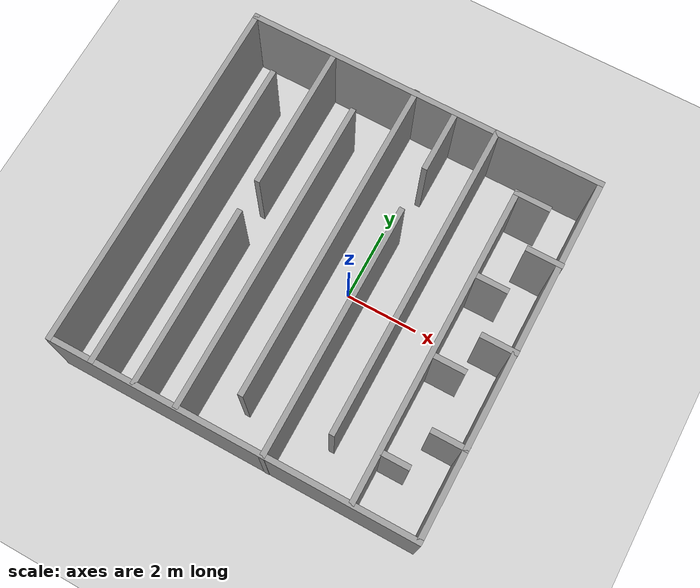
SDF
<sdf version="1.7">
 <world name="default">
  <light name="sun" type="directional">
   <pose>0 0 10 0 -0 0</pose>
   <diffuse>0.8 0.8 0.8 1</diffuse>
   <specular>0.2 0.2 0.2 1</specular>
   <attenuation>
    <range>1000</range>
    <constant>0.9</constant>
    <linear>0.01</linear>
    <quadratic>0.001</quadratic>
   </attenuation>
   <direction>-0.5 0.1 -0.9</direction>
   <spot><inner_angle>0</inner_angle><outer_angle>0</outer_angle><falloff>0</falloff></spot>
  </light>
  <model name="ground_plane">
   <static>1</static>
   <link name="link">
    <collision name="collision">
     <geometry><plane><normal>0 0 1</normal><size>100 100</size></plane></geometry>
     <surface>
      <contact><collide_bitmask>65535</collide_bitmask></contact>
      <friction><ode><mu>100</mu><mu2>50</mu2></ode></friction>
     </surface>
    </collision>
    <visual name="visual">
     <cast_shadows>0</cast_shadows>
     <geometry><plane><normal>0 0 1</normal><size>100 100</size></plane></geometry>
     <material>
      <script><uri>file://media/materials/scripts/gazebo.material</uri><name>Gazebo/Grey</name></script>
     </material>
    </visual>
   </link>
  </model>
  <gravity>0 0 -9.8</gravity>
  <magnetic_field>6e-06 2.3e-05 -4.2e-05</magnetic_field>
  <atmosphere type="adiabatic"/>
  <physics type="ode">
   <max_step_size>0.001</max_step_size>
   <real_time_factor>1</real_time_factor>
   <real_time_update_rate>1000</real_time_update_rate>
  </physics>
  <scene><ambient>0.4 0.4 0.4 1</ambient><background>0.7 0.7 0.7 1</background><shadows>1</shadows></scene>
  <spherical_coordinates>
   <surface_model>EARTH_WGS84</surface_model>
   <latitude_deg>0</latitude_deg>
   <longitude_deg>0</longitude_deg>
   <elevation>0</elevation>
   <heading_deg>0</heading_deg>
  </spherical_coordinates>
  <model name="scots2">
   <pose>-0.456727 -0.036555 0.008424 0 -0 0</pose>
   <link name="Wall_14">
    <collision name="Wall_14_Collision">
     <geometry><box><size>10 0.15 2.5</size></box></geometry>
     <pose>0 0 1.25 0 -0 0</pose>
    </collision>
    <visual name="Wall_14_Visual">
     <pose>0 0 1.25 0 -0 0</pose>
     <geometry><box><size>10 0.15 2.5</size></box></geometry>
     <material>
      <script><uri>file://media/materials/scripts/gazebo.material</uri><name>Gazebo/Grey</name></script>
      <ambient>1 1 1 1</ambient>
     </material>
     <meta><layer>0</layer></meta>
    </visual>
    <pose>-4.93346 -0.006517 0 0 -0 1.5708</pose>
   </link>
   <link name="Wall_15">
    <collision name="Wall_15_Collision">
     <geometry><box><size>10 0.15 2.5</size></box></geometry>
     <pose>0 0 1.25 0 -0 0</pose>
    </collision>
    <visual name="Wall_15_Visual">
     <pose>0 0 1.25 0 -0 0</pose>
     <geometry><box><size>10 0.15 2.5</size></box></geometry>
     <material>
      <script><uri>file://media/materials/scripts/gazebo.material</uri><name>Gazebo/Grey</name></script>
      <ambient>1 1 1 1</ambient>
     </material>
     <meta><layer>0</layer></meta>
    </visual>
    <pose>-0.008464 4.91848 0 0 -0 0</pose>
   </link>
   <link name="Wall_16">
    <collision name="Wall_16_Collision">
     <geometry><box><size>10 0.15 2.5</size></box></geometry>
     <pose>0 0 1.25 0 -0 0</pose>
    </collision>
    <visual name="Wall_16_Visual">
     <pose>0 0 1.25 0 -0 0</pose>
     <geometry><box><size>10 0.15 2.5</size></box></geometry>
     <material>
      <script><uri>file://media/materials/scripts/gazebo.material</uri><name>Gazebo/Grey</name></script>
      <ambient>1 1 1 1</ambient>
     </material>
     <meta><layer>0</layer></meta>
    </visual>
    <pose>4.91654 -0.006517 0 0 -0 -1.5708</pose>
   </link>
   <link name="Wall_21">
    <collision name="Wall_21_Collision">
     <geometry><box><size>8.75 0.15 2.5</size></box></geometry>
     <pose>0 0 1.25 0 -0 0</pose>
    </collision>
    <visual name="Wall_21_Visual">
     <pose>0 0 1.25 0 -0 0</pose>
     <geometry><box><size>8.75 0.15 2.5</size></box></geometry>
     <material>
      <script><uri>file://media/materials/scripts/gazebo.material</uri><name>Gazebo/Grey</name></script>
      <ambient>1 1 1 1</ambient>
     </material>
     <meta><layer>0</layer></meta>
    </visual>
    <pose>-3.75568 -0.625387 0 0 -0 1.5708</pose>
   </link>
   <link name="Wall_24">
    <collision name="Wall_24_Collision">
     <geometry><box><size>10 0.15 2.5</size></box></geometry>
     <pose>0 0 1.25 0 -0 0</pose>
    </collision>
    <visual name="Wall_24_Visual">
     <pose>0 0 1.25 0 -0 0</pose>
     <geometry><box><size>10 0.15 2.5</size></box></geometry>
     <material>
      <script><uri>file://media/materials/scripts/gazebo.material</uri><name>Gazebo/Grey</name></script>
      <ambient>1 1 1 1</ambient>
     </material>
     <meta><layer>0</layer></meta>
    </visual>
    <pose>-0.008464 -4.93152 0 0 -0 0</pose>
   </link>
   <link name="Wall_31">
    <collision name="Wall_31_Collision">
     <geometry><box><size>5 0.15 2.5</size></box></geometry>
     <pose>0 0 1.25 0 -0 0</pose>
    </collision>
    <visual name="Wall_31_Visual">
     <pose>0 0 1.25 0 -0 0</pose>
     <geometry><box><size>5 0.15 2.5</size></box></geometry>
     <material>
      <script><uri>file://media/materials/scripts/gazebo.material</uri><name>Gazebo/Grey</name></script>
      <ambient>1 1 1 1</ambient>
     </material>
     <meta><layer>0</layer></meta>
    </visual>
    <pose>-2.60034 -2.46392 0 0 -0 -1.5708</pose>
   </link>
   <link name="Wall_33">
    <collision name="Wall_33_Collision">
     <geometry><box><size>8.75 0.15 2.5</size></box></geometry>
     <pose>0 0 1.25 0 -0 0</pose>
    </collision>
    <visual name="Wall_33_Visual">
     <pose>0 0 1.25 0 -0 0</pose>
     <geometry><box><size>8.75 0.15 2.5</size></box></geometry>
     <material>
      <script><uri>file://media/materials/scripts/gazebo.material</uri><name>Gazebo/Grey</name></script>
      <ambient>1 1 1 1</ambient>
     </material>
     <meta><layer>0</layer></meta>
    </visual>
    <pose>-1.44813 -0.590704 0 0 -0 -1.5708</pose>
   </link>
   <link name="Wall_42">
    <collision name="Wall_42_Collision">
     <geometry><box><size>9 0.15 2.5</size></box></geometry>
     <pose>0 0 1.25 0 -0 0</pose>
    </collision>
    <visual name="Wall_42_Visual">
     <pose>0 0 1.25 0 -0 0</pose>
     <geometry><box><size>9 0.15 2.5</size></box></geometry>
     <material>
      <script><uri>file://media/materials/scripts/gazebo.material</uri><name>Gazebo/Grey</name></script>
      <ambient>1 1 1 1</ambient>
     </material>
     <meta><layer>0</layer></meta>
    </visual>
    <pose>-0.266412 0.51465 0 0 -0 -1.5708</pose>
   </link>
   <link name="Wall_44">
    <collision name="Wall_44_Collision">
     <geometry><box><size>7 0.15 2.5</size></box></geometry>
     <pose>0 0 1.25 0 -0 0</pose>
    </collision>
    <visual name="Wall_44_Visual">
     <pose>0 0 1.25 0 -0 0</pose>
     <geometry><box><size>7 0.15 2.5</size></box></geometry>
     <material>
      <script><uri>file://media/materials/scripts/gazebo.material</uri><name>Gazebo/Grey</name></script>
      <ambient>1 1 1 1</ambient>
     </material>
     <meta><layer>0</layer></meta>
    </visual>
    <pose>0.884549 -1.51465 0 0 -0 -1.5708</pose>
   </link>
   <link name="Wall_50">
    <collision name="Wall_50_Collision">
     <geometry><box><size>8.75 0.15 2.5</size></box></geometry>
     <pose>0 0 1.25 0 -0 0</pose>
    </collision>
    <visual name="Wall_50_Visual">
     <pose>0 0 1.25 0 -0 0</pose>
     <geometry><box><size>8.75 0.15 2.5</size></box></geometry>
     <material>
      <script><uri>file://media/materials/scripts/gazebo.material</uri><name>Gazebo/Grey</name></script>
      <ambient>1 1 1 1</ambient>
     </material>
     <meta><layer>0</layer></meta>
    </visual>
    <pose>2.04333 0.599244 0 0 -0 -1.5708</pose>
   </link>
   <link name="Wall_52">
    <collision name="Wall_52_Collision">
     <geometry><box><size>8.75 0.15 2.5</size></box></geometry>
     <pose>0 0 1.25 0 -0 0</pose>
    </collision>
    <visual name="Wall_52_Visual">
     <pose>0 0 1.25 0 -0 0</pose>
     <geometry><box><size>8.75 0.15 2.5</size></box></geometry>
     <material>
      <script><uri>file://media/materials/scripts/gazebo.material</uri><name>Gazebo/Grey</name></script>
      <ambient>1 1 1 1</ambient>
     </material>
     <meta><layer>0</layer></meta>
    </visual>
    <pose>3.18861 -0.596064 0 0 -0 -1.5708</pose>
   </link>
   <link name="Wall_55">
    <collision name="Wall_55_Collision">
     <geometry><box><size>4 0.15 2.5</size></box></geometry>
     <pose>0 0 1.25 0 -0 0</pose>
    </collision>
    <visual name="Wall_55_Visual">
     <pose>0 0 1.25 0 -0 0</pose>
     <geometry><box><size>4 0.15 2.5</size></box></geometry>
     <material>
      <script><uri>file://media/materials/scripts/gazebo.material</uri><name>Gazebo/Grey</name></script>
      <ambient>1 1 1 1</ambient>
     </material>
     <meta><layer>0</layer></meta>
    </visual>
    <pose>-2.60975 2.87787 0 0 -0 1.5708</pose>
   </link>
   <link name="Wall_57">
    <collision name="Wall_57_Collision">
     <geometry><box><size>1 0.15 2.5</size></box></geometry>
     <pose>0 0 1.25 0 -0 0</pose>
    </collision>
    <visual name="Wall_57_Visual">
     <pose>0 0 1.25 0 -0 0</pose>
     <geometry><box><size>1 0.15 2.5</size></box></geometry>
     <material>
      <script><uri>file://media/materials/scripts/gazebo.material</uri><name>Gazebo/Grey</name></script>
      <ambient>1 1 1 1</ambient>
     </material>
     <meta><layer>0</layer></meta>
    </visual>
    <pose>3.61611 3.69762 0 0 -0 0</pose>
   </link>
   <link name="Wall_59">
    <collision name="Wall_59_Collision">
     <geometry><box><size>1.75 0.15 2.5</size></box></geometry>
     <pose>0 0 1.25 0 -0 0</pose>
    </collision>
    <visual name="Wall_59_Visual">
     <pose>0 0 1.25 0 -0 0</pose>
     <geometry><box><size>1.75 0.15 2.5</size></box></geometry>
     <material>
      <script><uri>file://media/materials/scripts/gazebo.material</uri><name>Gazebo/Grey</name></script>
      <ambient>1 1 1 1</ambient>
     </material>
     <meta><layer>0</layer></meta>
    </visual>
    <pose>0.884561 4.04647 0 0 -0 1.5708</pose>
   </link>
   <link name="Wall_61">
    <collision name="Wall_61_Collision">
     <geometry><box><size>1 0.15 2.5</size></box></geometry>
     <pose>0 0 1.25 0 -0 0</pose>
    </collision>
    <visual name="Wall_61_Visual">
     <pose>0 0 1.25 0 -0 0</pose>
     <geometry><box><size>1 0.15 2.5</size></box></geometry>
     <material>
      <script><uri>file://media/materials/scripts/gazebo.material</uri><name>Gazebo/Grey</name></script>
      <ambient>1 1 1 1</ambient>
     </material>
     <meta><layer>0</layer></meta>
    </visual>
    <pose>4.50846 2.50386 0 0 -0 3.14159</pose>
   </link>
   <link name="Wall_66">
    <collision name="Wall_66_Collision">
     <geometry><box><size>1 0.15 2.5</size></box></geometry>
     <pose>0 0 1.25 0 -0 0</pose>
    </collision>
    <visual name="Wall_66_Visual">
     <pose>0 0 1.25 0 -0 0</pose>
     <geometry><box><size>1 0.15 2.5</size></box></geometry>
     <material>
      <script><uri>file://media/materials/scripts/gazebo.material</uri><name>Gazebo/Grey</name></script>
      <ambient>1 1 1 1</ambient>
     </material>
     <meta><layer>0</layer></meta>
    </visual>
    <pose>4.49425 -2.5656 0 0 -0 0</pose>
   </link>
   <link name="Wall_70">
    <collision name="Wall_70_Collision">
     <geometry><box><size>1 0.15 2.5</size></box></geometry>
     <pose>0 0 1.25 0 -0 0</pose>
    </collision>
    <visual name="Wall_70_Visual">
     <pose>0 0 1.25 0 -0 0</pose>
     <geometry><box><size>1 0.15 2.5</size></box></geometry>
     <material>
      <script><uri>file://media/materials/scripts/gazebo.material</uri><name>Gazebo/Grey</name></script>
      <ambient>1 1 1 1</ambient>
     </material>
     <meta><layer>0</layer></meta>
    </visual>
    <pose>3.61891 1.30487 0 0 -0 0</pose>
   </link>
   <link name="Wall_72">
    <collision name="Wall_72_Collision">
     <geometry><box><size>1 0.15 2.5</size></box></geometry>
     <pose>0 0 1.25 0 -0 0</pose>
    </collision>
    <visual name="Wall_72_Visual">
     <pose>0 0 1.25 0 -0 0</pose>
     <geometry><box><size>1 0.15 2.5</size></box></geometry>
     <material>
      <script><uri>file://media/materials/scripts/gazebo.material</uri><name>Gazebo/Grey</name></script>
      <ambient>1 1 1 1</ambient>
     </material>
     <meta><layer>0</layer></meta>
    </visual>
    <pose>4.49826 0.024012 0 0 -0 0</pose>
   </link>
   <link name="Wall_76">
    <collision name="Wall_76_Collision">
     <geometry><box><size>1 0.15 2.5</size></box></geometry>
     <pose>0 0 1.25 0 -0 0</pose>
    </collision>
    <visual name="Wall_76_Visual">
     <pose>0 0 1.25 0 -0 0</pose>
     <geometry><box><size>1 0.15 2.5</size></box></geometry>
     <material>
      <script><uri>file://media/materials/scripts/gazebo.material</uri><name>Gazebo/Grey</name></script>
      <ambient>1 1 1 1</ambient>
     </material>
     <meta><layer>0</layer></meta>
    </visual>
    <pose>3.6146 -0.957022 0 0 -0 3.14159</pose>
   </link>
   <link name="Wall_78">
    <collision name="Wall_78_Collision">
     <geometry><box><size>0.75 0.15 2.5</size></box></geometry>
     <pose>0 0 1.25 0 -0 0</pose>
    </collision>
    <visual name="Wall_78_Visual">
     <pose>0 0 1.25 0 -0 0</pose>
     <geometry><box><size>0.75 0.15 2.5</size></box></geometry>
     <material>
      <script><uri>file://media/materials/scripts/gazebo.material</uri><name>Gazebo/Grey</name></script>
      <ambient>1 1 1 1</ambient>
     </material>
     <meta><layer>0</layer></meta>
    </visual>
    <pose>3.61386 -3.56868 0 0 -0 0</pose>
   </link>
   <static>1</static>
  </model>
 </world>
</sdf>
